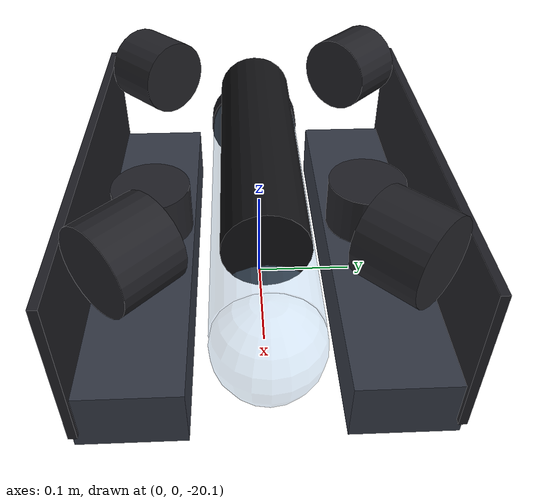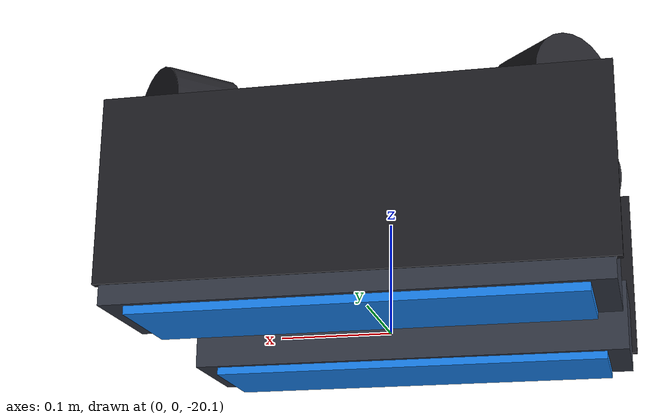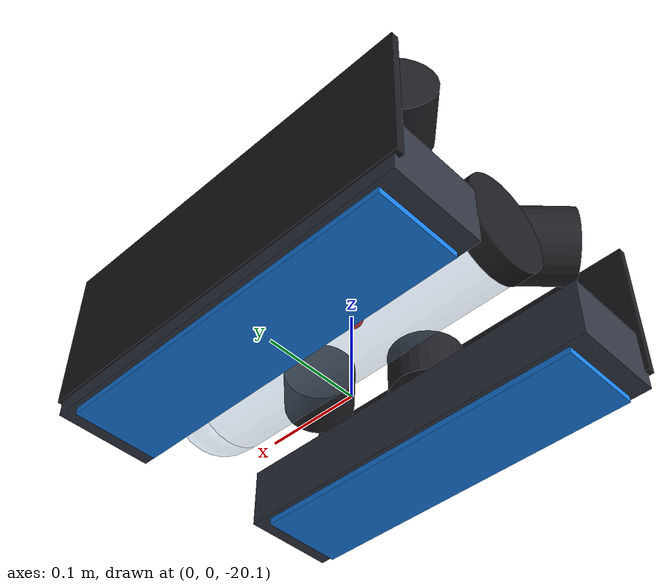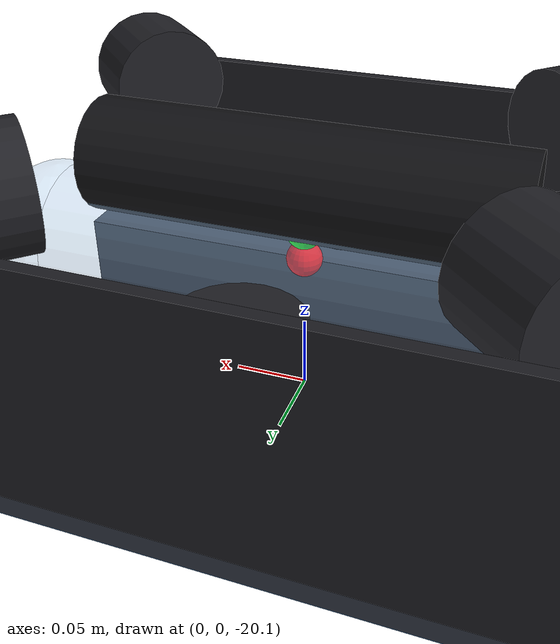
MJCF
<mujoco model="bluerov2_scratch_ned">
  <option timestep="0.002" gravity="0 0 9.81" integrator="implicitfast"
          density="0" viscosity="0"/>

  <visual>
    <headlight ambient="0.5 0.5 0.55" diffuse="0.7 0.7 0.75" specular="0.3 0.3 0.3"/>
    <scale framelength="0.3" framewidth="0.01"/>
  </visual>

  <asset>
    <material name="float"  rgba="0.20 0.22 0.27 1" specular="0.4" shininess="0.3"/>
    <material name="accent" rgba="0.10 0.52 0.95 1" emission="0.25"/>
    <material name="tube"   rgba="0.60 0.78 0.95 0.32" specular="0.7" shininess="0.6" reflectance="0.2"/>
    <material name="batt"   rgba="0.07 0.07 0.08 1" specular="0.3" shininess="0.2"/>
    <material name="frame"  rgba="0.12 0.12 0.14 1" specular="0.3" shininess="0.25"/>
    <material name="duct"   rgba="0.13 0.13 0.15 1" specular="0.4" shininess="0.3"/>
    <material name="prop"   rgba="0.78 0.80 0.84 1" specular="0.6" shininess="0.5"/>
  </asset>

  <default>
    <geom contype="0" conaffinity="0" group="1"/>
  </default>

  <worldbody>
    <light name="key" pos="0.6 0.6 -22" dir="-0.3 -0.3 1" directional="true"
           diffuse="0.55 0.55 0.6" specular="0.25 0.25 0.25"/>
    <body name="base_link" pos="0 0 -20">
      <freejoint name="free"/>
      <inertial pos="0 0 0.02" mass="11.26" diaginertia="0.3 0.63 0.58"/>

      <!-- top buoyancy floats (-z = up) -->
      <geom type="box" material="float" pos="0  0.12 -0.075" size="0.205 0.05 0.032"/>
      <geom type="box" material="float" pos="0 -0.12 -0.075" size="0.205 0.05 0.032"/>
      <geom type="box" material="accent" pos="0  0.12 -0.109" size="0.185 0.045 0.005"/>
      <geom type="box" material="accent" pos="0 -0.12 -0.109" size="0.185 0.045 0.005"/>

      <!-- central electronics enclosure (clear acrylic tube + dome) -->
      <geom type="cylinder" material="tube" zaxis="1 0 0" pos="0 0 -0.01" size="0.05 0.17"/>
      <geom type="sphere"   material="tube" pos="0.18 0 -0.01" size="0.05"/>
      <geom type="cylinder" material="frame" zaxis="1 0 0" pos="-0.175 0 -0.01" size="0.052 0.012"/>

      <!-- bottom battery enclosure -->
      <geom type="cylinder" material="batt" zaxis="1 0 0" pos="0 0 0.055" size="0.038 0.14"/>

      <!-- side frame panels -->
      <geom type="box" material="frame" pos="0  0.168 -0.01" size="0.21 0.004 0.08"/>
      <geom type="box" material="frame" pos="0 -0.168 -0.01" size="0.21 0.004 0.08"/>

      <!-- 4 vectored horizontal thrusters (45 deg, X pattern) -->
      <geom type="cylinder" material="duct" zaxis="1 1 0"  pos="0.156  0.111 0.072" size="0.04 0.03"/>
      <geom type="cylinder" material="prop" zaxis="1 1 0"  pos="0.156  0.111 0.072" size="0.033 0.007"/>
      <geom type="cylinder" material="duct" zaxis="1 -1 0" pos="0.156 -0.111 0.072" size="0.04 0.03"/>
      <geom type="cylinder" material="prop" zaxis="1 -1 0" pos="0.156 -0.111 0.072" size="0.033 0.007"/>
      <geom type="cylinder" material="duct" zaxis="1 -1 0" pos="-0.156  0.111 0.072" size="0.04 0.03"/>
      <geom type="cylinder" material="prop" zaxis="1 -1 0" pos="-0.156  0.111 0.072" size="0.033 0.007"/>
      <geom type="cylinder" material="duct" zaxis="1 1 0"  pos="-0.156 -0.111 0.072" size="0.04 0.03"/>
      <geom type="cylinder" material="prop" zaxis="1 1 0"  pos="-0.156 -0.111 0.072" size="0.033 0.007"/>

      <!-- 2 vertical thrusters (heave) -->
      <geom type="cylinder" material="duct" zaxis="0 0 1" pos="0  0.1105 -0.005" size="0.04 0.026"/>
      <geom type="cylinder" material="prop" zaxis="0 0 1" pos="0  0.1105 -0.005" size="0.033 0.007"/>
      <geom type="cylinder" material="duct" zaxis="0 0 1" pos="0 -0.1105 -0.005" size="0.04 0.026"/>
      <geom type="cylinder" material="prop" zaxis="0 0 1" pos="0 -0.1105 -0.005" size="0.033 0.007"/>

      <site name="origin_cb" pos="0 0 0"    size="0.012" rgba="1 0 0 1"/>
      <site name="cg"        pos="0 0 0.02" size="0.012" rgba="0 1 0 1"/>
    </body>
  </worldbody>
</mujoco>
